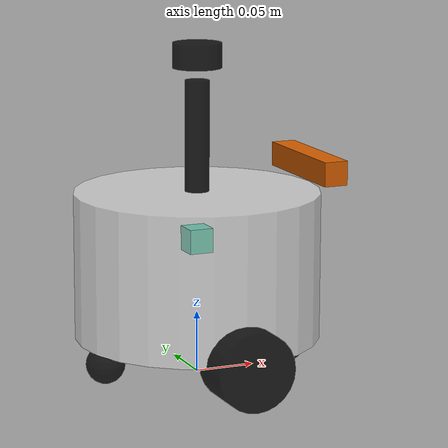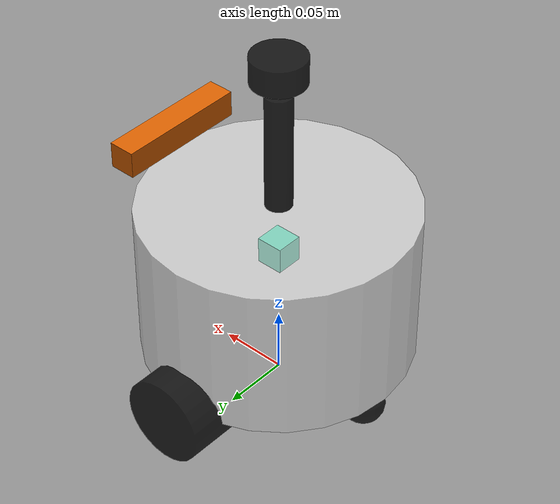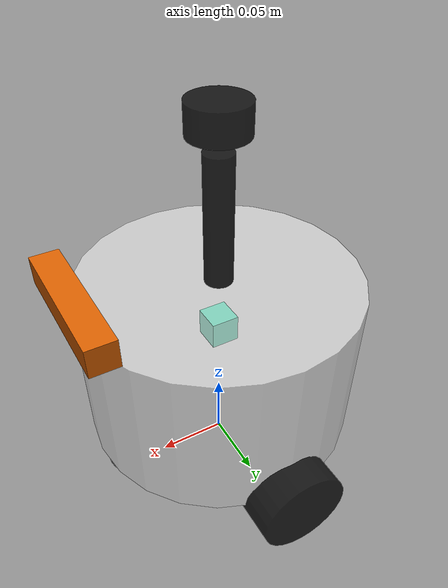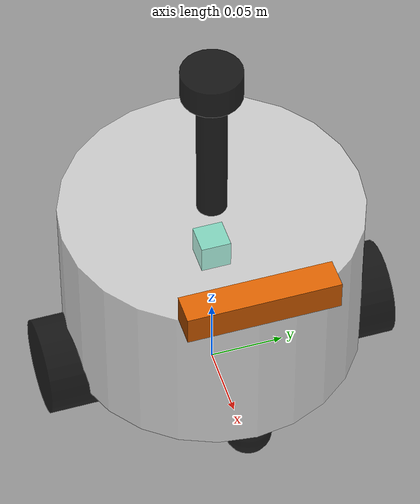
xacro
<?xml version="1.0"?>
<robot xmlns:xacro="http://www.ros.org/wiki/xacro" name="fishbot">
    <!-- ROS 2 Jazzy uses Gazebo Harmonic. Keep Classic-only plugins opt-in. -->
    <xacro:arg name="use_gazebo_classic" default="false" />
    <xacro:arg name="use_gz_ros2_control" default="true" />

    <xacro:include filename="$(find fishbot_description)/urdf/fishbot/base.urdf.xacro" />
    <!-- 传感器组件 -->
    <xacro:include filename="$(find fishbot_description)/urdf/fishbot/sensor/imu.urdf.xacro" />
    <xacro:include filename="$(find fishbot_description)/urdf/fishbot/sensor/laser.urdf.xacro" />
    <xacro:include filename="$(find fishbot_description)/urdf/fishbot/sensor/camera.urdf.xacro" />
     <!-- 执行器组件 -->
    <xacro:include filename="$(find fishbot_description)/urdf/fishbot/actuator/wheel.urdf.xacro" />
    <xacro:include filename="$(find fishbot_description)/urdf/fishbot/actuator/caster.urdf.xacro" />

    <xacro:base_xacro length="0.12" radius="0.1" />
    <!-- 传感器 -->
    <xacro:imu_xacro xyz="0 0 0.02" />
    <xacro:laser_xacro xyz="0 0 0.10" />
    <xacro:camera_xacro xyz="0.10 0 0.075" />
    <!-- 执行器主动轮+从动轮 -->
    <xacro:wheel_xacro wheel_name="left" xyz="0 0.10 -0.06" />
    <xacro:wheel_xacro wheel_name="right" xyz="0 -0.10 -0.06" />
    <xacro:caster_xacro caster_name="front" xyz="0.08 0.0 -0.076" />
    <xacro:caster_xacro caster_name="back" xyz="-0.08 0.0 -0.076" />
    <!-- Gazebo Classic 插件（Humble 教程兼容模式） -->
    <xacro:include filename="$(find fishbot_description)/urdf/fishbot/plugins/gazebo_control_plugin.xacro" />
    <xacro:include filename="$(find fishbot_description)/urdf/fishbot/fishbot.ros2_control.xacro" />
    <xacro:include filename="$(find fishbot_description)/urdf/fishbot/plugins/gazebo_sensor_plugin.xacro" />
    <xacro:include filename="$(find fishbot_description)/urdf/fishbot/plugins/gz_sim_drive_plugin.xacro" />
    <xacro:include filename="$(find fishbot_description)/urdf/fishbot/plugins/gz_sim_sensor_plugin.xacro" />
    <xacro:if value="$(arg use_gazebo_classic)">
        <xacro:fishbot_ros2_control />
        <xacro:gazebo_sensor_plugin />
    </xacro:if>
    <xacro:unless value="$(arg use_gazebo_classic)">
        <xacro:gz_sim_sensor_plugin />
        <xacro:if value="$(arg use_gz_ros2_control)">
            <xacro:fishbot_ros2_control />
        </xacro:if>
        <xacro:unless value="$(arg use_gz_ros2_control)">
            <xacro:gz_sim_drive_plugin />
        </xacro:unless>
    </xacro:unless>
</robot>

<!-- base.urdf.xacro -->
<robot xmlns:xacro="http://www.ros.org/wiki/xacro">
  <xacro:include filename="$(find fishbot_description)/urdf/fishbot/common_inertia.xacro" />
  <xacro:macro name="base_xacro" params="radius length">
    <link name="base_footprint" />

    <link name="base_link">
      <visual>
        <origin xyz="0.0 0.0 0.0" rpy="0.0 0.0 0.0" />
        <geometry>
          <cylinder radius="${radius}" length="${length}"/>
        </geometry>
        <material name="white">
          <color rgba="1.0 1.0 1.0 0.5"/>
        </material>
      </visual>

      <collision>
        <origin xyz="0.0 0.0 0.0" rpy="0.0 0.0 0.0" />
        <geometry>
          <cylinder radius="${radius}" length="${length}"/>
        </geometry>
      </collision>

      <xacro:cylinder_inertia m="1.0" r="${radius}" h="${length}" />
    </link>

    <joint name="base_joint" type="fixed">
      <origin xyz="0.0 0.0 ${length / 2.0 + 0.032 - 0.001}" rpy="0.0 0.0 0.0"/>
      <parent link="base_footprint"/>
      <child link="base_link"/>
    </joint>

  </xacro:macro>

</robot>

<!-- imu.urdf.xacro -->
<robot xmlns:xacro="http://www.ros.org/wiki/xacro">
  <xacro:include filename="$(find fishbot_description)/urdf/fishbot/common_inertia.xacro" />

  <xacro:macro name="imu_xacro" params="xyz">
    <link name="imu_link">
      <visual>
        <origin xyz="0.0 0.0 0.0" rpy="0.0 0.0 0.0" />
        <geometry>
          <box size="0.02 0.02 0.02" />
        </geometry>
      </visual>
      <collision>
        <origin xyz="0.0 0.0 0.0" rpy="0.0 0.0 0.0" />
        <geometry>
          <box size="0.02 0.02 0.02" />
        </geometry>
      </collision>
      <material name="black">
        <color rgba="0.0 0.0 0.0 0.5"/>
      </material>
      <xacro:box_inertia m="0.05" w="0.02" h="0.02" d="0.02" />
    </link>

    <joint name="imu_joint" type="fixed">
      <parent link="base_link" />
      <child link="imu_link" />
      <origin xyz="${xyz}" rpy="0.0 0.0 0.0" />
    </joint>
  </xacro:macro>

</robot>

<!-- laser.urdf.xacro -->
<robot xmlns:xacro="http://www.ros.org/wiki/xacro">
   <xacro:include filename="$(find fishbot_description)/urdf/fishbot/common_inertia.xacro" />
    <xacro:macro name="laser_xacro" params="xyz">
        <gazebo reference="laser_cylinder_link">
            <material>Gazebo/Black</material>
        </gazebo>
        <gazebo reference="laser_link">
            <material>Gazebo/Black</material>
        </gazebo>

        <!-- ============雷达支撑杆================ -->
        <link name="laser_cylinder_link">
            <visual>
                <origin xyz="0 0 0" rpy="0 0 0" />
                <geometry>
                    <cylinder length="0.10" radius="0.01" />
                </geometry>
                <material name="black">
                    <color rgba="0.0 0.0 0.0 0.8" />
                </material>
            </visual>
            <collision>
                <origin xyz="0 0 0" rpy="0 0 0" />
                <geometry>
                    <cylinder length="0.10" radius="0.01" />
                </geometry>
                <material name="black">
                    <color rgba="0.0 0.0 0.0 0.8" />
                </material>
            </collision>
            <xacro:cylinder_inertia m="0.01" r="0.01" h="0.10" />
        </link>

        <joint name="laser_cylinder_joint" type="fixed">
            <parent link="base_link" />
            <child link="laser_cylinder_link" />
            <origin xyz="${xyz}" />
        </joint>
        <!-- ============雷达================ -->
        <link name="laser_link">
            <visual>
                <origin xyz="0 0 -0.03" rpy="0 0 0" />
                <geometry>
                    <cylinder length="0.02" radius="0.02" />
                </geometry>
                <material name="black">
                    <color rgba="0.0 0.0 0.0 0.8" />
                </material>
            </visual>
            <collision>
                <origin xyz="0 0 -0.03" rpy="0 0 0" />
                <geometry>
                    <cylinder length="0.02" radius="0.02" />
                </geometry>
                <material name="black">
                    <color rgba="0.0 0.0 0.0 0.8" />
                </material>
            </collision>
            <xacro:cylinder_inertia m="0.03" r="0.02" h="0.02" />
        </link>

        <joint name="laser_joint" type="fixed">
            <parent link="laser_cylinder_link" />
            <child link="laser_link" />
            <origin xyz="0 0 0.1" />
        </joint>

    </xacro:macro>

</robot>

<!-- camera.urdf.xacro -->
<robot xmlns:xacro="http://www.ros.org/wiki/xacro">
  <xacro:include filename="$(find fishbot_description)/urdf/fishbot/common_inertia.xacro" />

  <xacro:macro name="camera_xacro" params="xyz">
    <link name="camera_link">
      <visual>
        <origin xyz="0.0 0.0 0.0" rpy="0.0 0.0 0.0" />
        <geometry>
          <box size="0.02 0.1 0.02" />
        </geometry>
      </visual>
      <collision>
        <origin xyz="0.0 0.0 0.0" rpy="0.0 0.0 0.0" />
        <geometry>
          <box size="0.02 0.1 0.02" />
        </geometry>
      </collision>
      <material name="blue">
        <color rgba="0.0 0.0 1.0 0.5"/>
      </material>
      <xacro:box_inertia m="0.05" w="0.02" h="0.1" d="0.02" />
    </link>

    <link name="camera_optical_link" />

    <joint name="camera_joint" type="fixed">
      <parent link="base_link" />
      <child link="camera_link" />
      <origin xyz="${xyz}" rpy="0.0 0.0 0.0" />
    </joint>

    <joint name="camera_optical_joint" type="fixed">
      <parent link="camera_link" />
      <child link="camera_optical_link" />
      <origin xyz="0 0 0" rpy="${-pi/2} 0.0 ${-pi/2}" />
    </joint>

  </xacro:macro>

</robot>

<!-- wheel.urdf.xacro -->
<robot xmlns:xacro="http://www.ros.org/wiki/xacro">
   <xacro:include filename="$(find fishbot_description)/urdf/fishbot/common_inertia.xacro" />
    <xacro:macro name="wheel_xacro" params="wheel_name xyz">
        <link name="${wheel_name}_wheel_link">
            <visual>
                <origin xyz="0 0 0" rpy="1.57079 0 0" />
                <geometry>
                    <cylinder length="0.04" radius="0.032" />
                </geometry>
                <material name="black">
                    <color rgba="0.0 0.0 0.0 0.8"/>
                </material>
            </visual>
            <collision>
                <origin xyz="0 0 0" rpy="1.57079 0 0" />
                <geometry>
                    <cylinder length="0.04" radius="0.032" />
                </geometry>
                <material name="black">
                    <color rgba="0.0 0.0 0.0 0.8"/>
                </material>
            </collision>
            <xacro:cylinder_inertia m="0.1" h="0.04" r="0.032"/>
        </link>
        <gazebo reference="${wheel_name}_wheel_link">
            <mu1 value="1.0" />
            <mu2 value="1.0" />
            <kp value="1000000.0" />
            <kd value="1.0" />
        </gazebo>

        <joint name="${wheel_name}_wheel_joint" type="continuous">
            <parent link="base_link" />
            <child link="${wheel_name}_wheel_link" />
            <origin xyz="${xyz}" />
            <axis xyz="0 1 0" />
        </joint>
    </xacro:macro>
</robot>

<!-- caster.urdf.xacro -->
<robot xmlns:xacro="http://www.ros.org/wiki/xacro">
   <xacro:include filename="$(find fishbot_description)/urdf/fishbot/common_inertia.xacro" />
    <xacro:macro name="caster_xacro" params="caster_name xyz">
        <link name="${caster_name}_caster_link">
            <visual>
                <origin xyz="0 0 0" rpy="0 0 0" />
                <geometry>
                    <sphere radius="0.016" />
                </geometry>
                <material name="black">
                    <color rgba="0.0 0.0 0.0 0.8"/>
                </material>
            </visual>
            <collision>
                <origin xyz="0 0 0" rpy="0 0 0" />
                <geometry>
                    <sphere radius="0.016" />
                </geometry>
                <material name="black">
                    <color rgba="0.0 0.0 0.0 0.8"/>
                </material>
            </collision>
            <xacro:sphere_inertia m="0.01" r="0.016" />
        </link>
        <gazebo reference="${caster_name}_caster_link">
            <mu1 value="0.0" />
            <mu2 value="0.0" />
            <kp value="1000000.0" />
            <kd value="1.0" />
        </gazebo>

        <joint name="${caster_name}_caster_joint" type="fixed">
            <parent link="base_link" />
            <child link="${caster_name}_caster_link" />
            <origin xyz="${xyz}" />
            <axis xyz="0 0 0" />
        </joint>

    </xacro:macro>
</robot>
